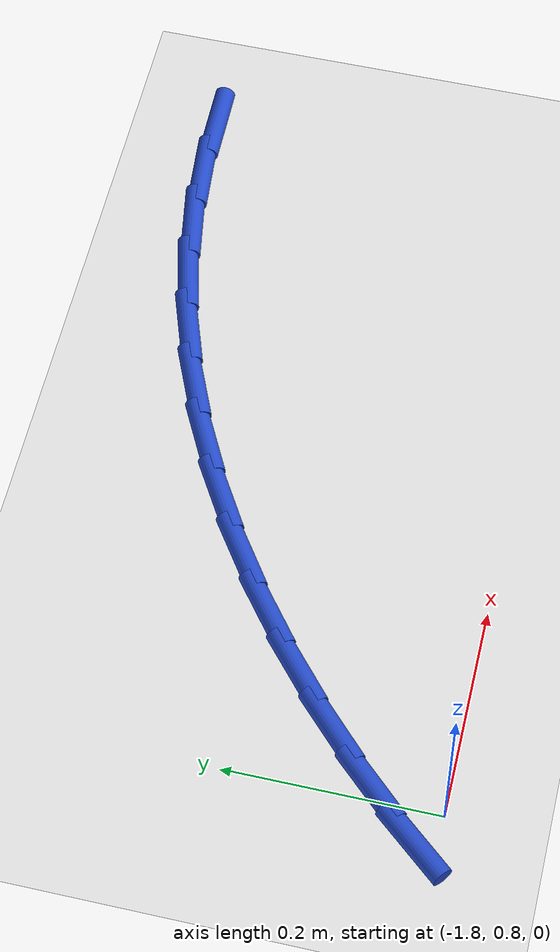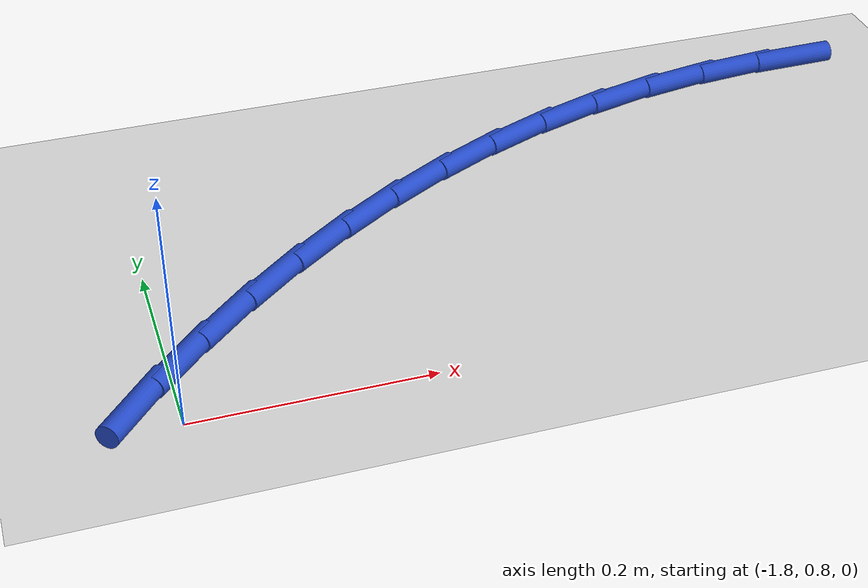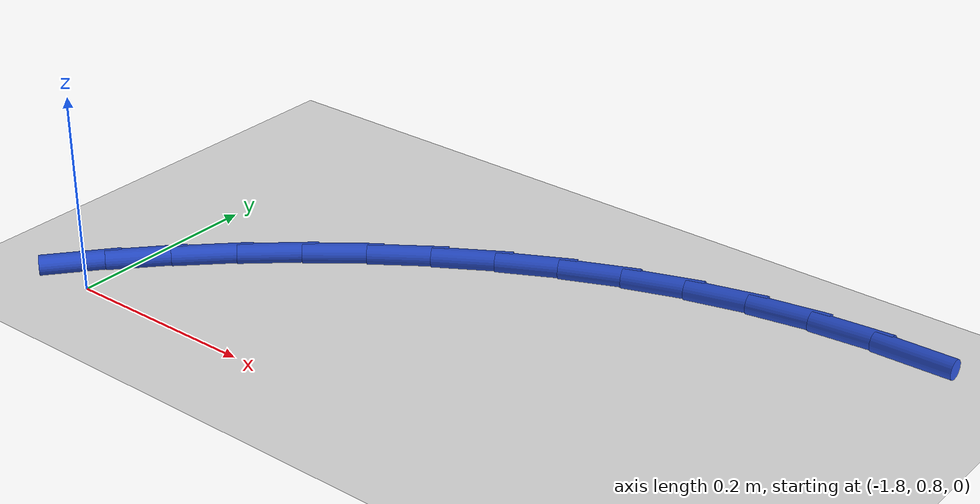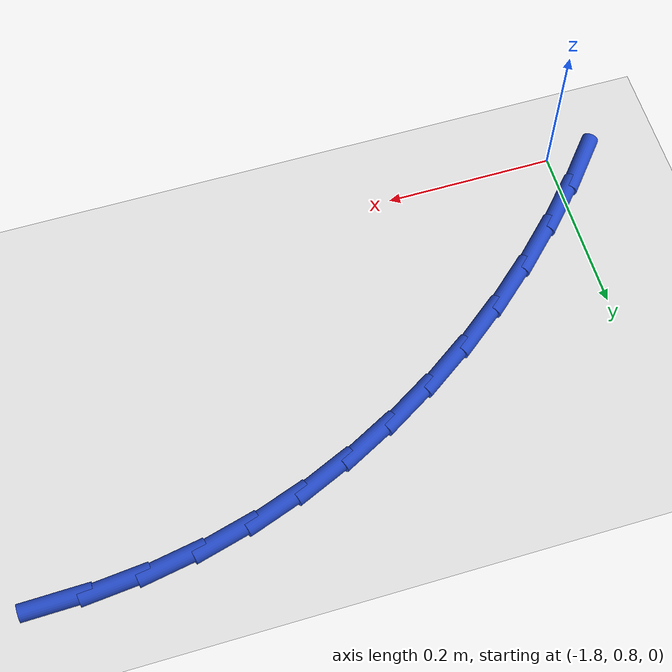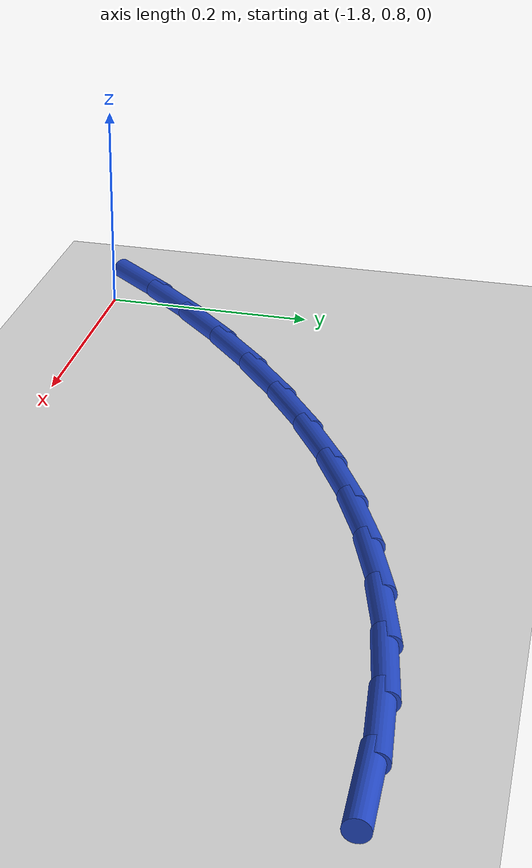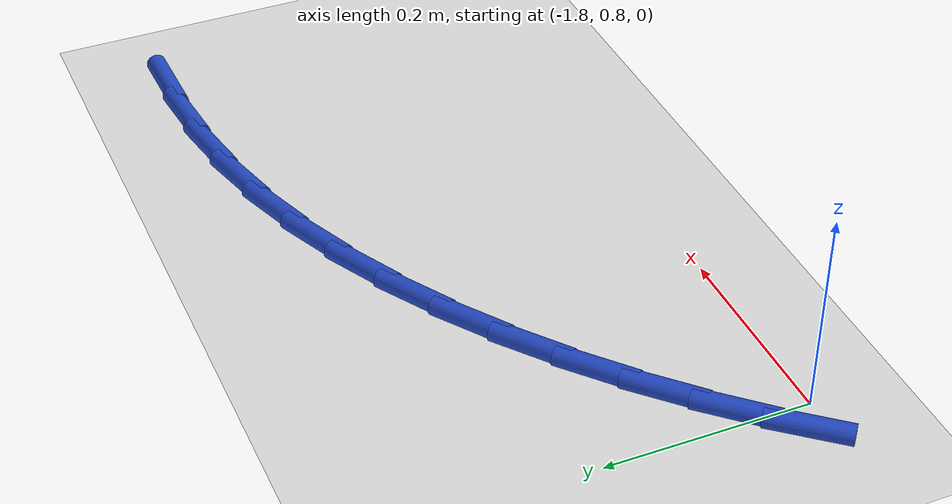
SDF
<sdf version="1.6">
 <world name="default">
  <model name="ground_plane">
   <static>1</static>
   <link name="link">
    <collision name="collision">
     <geometry><plane><normal>0 0 1</normal><size>100 100</size></plane></geometry>
     <surface><friction><ode><mu>100</mu><mu2>50</mu2></ode></friction></surface>
    </collision>
    <visual name="visual">
     <cast_shadows>0</cast_shadows>
     <geometry><plane><normal>0 0 1</normal><size>100 100</size></plane></geometry>
     <material>
      <script><uri>file://media/materials/scripts/gazebo.material</uri><name>Gazebo/WhiteGlow</name></script>
     </material>
    </visual>
   </link>
  </model>
  <model name="line">
   <link name="link_28">
    <pose>-1.1187028475868679 1.1735730946585516 0.01 0 1.57 0.019079662235753934</pose>
    <collision name="collision">
     <geometry><cylinder><radius>0.01</radius><length>0.08</length></cylinder></geometry>
    </collision>
    <visual name="visual">
     <material>
      <script><name>Gazebo/Blue</name><uri>file://media/materials/scripts/gazebo.material</uri></script>
     </material>
     <geometry><cylinder><radius>0.01</radius><length>0.08</length></cylinder></geometry>
    </visual>
   </link>
   <link name="link_29">
    <pose>-1.1815850007583404 1.172373178808656 0.01 0 1.57 0.09586181471503626</pose>
    <collision name="collision">
     <geometry><cylinder><radius>0.01</radius><length>0.08</length></cylinder></geometry>
    </collision>
    <visual name="visual">
     <material>
      <script><name>Gazebo/Blue</name><uri>file://media/materials/scripts/gazebo.material</uri></script>
     </material>
     <geometry><cylinder><radius>0.01</radius><length>0.08</length></cylinder></geometry>
    </visual>
   </link>
   <link name="link_30">
    <pose>-1.243923424676854 1.166378931753902 0.01 0 1.57 0.17686797643280647</pose>
    <collision name="collision">
     <geometry><cylinder><radius>0.01</radius><length>0.08</length></cylinder></geometry>
    </collision>
    <visual name="visual">
     <material>
      <script><name>Gazebo/Blue</name><uri>file://media/materials/scripts/gazebo.material</uri></script>
     </material>
     <geometry><cylinder><radius>0.01</radius><length>0.08</length></cylinder></geometry>
    </visual>
   </link>
   <link name="link_31">
    <pose>-1.3053974848366892 1.1553913270305838 0.01 0 1.57 0.2596142040582244</pose>
    <collision name="collision">
     <geometry><cylinder><radius>0.01</radius><length>0.08</length></cylinder></geometry>
    </collision>
    <visual name="visual">
     <material>
      <script><name>Gazebo/Blue</name><uri>file://media/materials/scripts/gazebo.material</uri></script>
     </material>
     <geometry><cylinder><radius>0.01</radius><length>0.08</length></cylinder></geometry>
    </visual>
   </link>
   <link name="link_32">
    <pose>-1.365735219229402 1.1393651127283397 0.01 0 1.57 0.33838265094514014</pose>
    <collision name="collision">
     <geometry><cylinder><radius>0.01</radius><length>0.08</length></cylinder></geometry>
    </collision>
    <visual name="visual">
     <material>
      <script><name>Gazebo/Blue</name><uri>file://media/materials/scripts/gazebo.material</uri></script>
     </material>
     <geometry><cylinder><radius>0.01</radius><length>0.08</length></cylinder></geometry>
    </visual>
   </link>
   <link name="link_33">
    <pose>-1.4247705333641598 1.118589511869161 0.01 0 1.57 0.4124141269007058</pose>
    <collision name="collision">
     <geometry><cylinder><radius>0.01</radius><length>0.08</length></cylinder></geometry>
    </collision>
    <visual name="visual">
     <material>
      <script><name>Gazebo/Blue</name><uri>file://media/materials/scripts/gazebo.material</uri></script>
     </material>
     <geometry><cylinder><radius>0.01</radius><length>0.08</length></cylinder></geometry>
    </visual>
   </link>
   <link name="link_34">
    <pose>-1.482351243958264 1.0933976981645863 0.01 0 1.57 0.48188473611051746</pose>
    <collision name="collision">
     <geometry><cylinder><radius>0.01</radius><length>0.08</length></cylinder></geometry>
    </collision>
    <visual name="visual">
     <material>
      <script><name>Gazebo/Blue</name><uri>file://media/materials/scripts/gazebo.material</uri></script>
     </material>
     <geometry><cylinder><radius>0.01</radius><length>0.08</length></cylinder></geometry>
    </visual>
   </link>
   <link name="link_35">
    <pose>-1.538325167729015 1.0641228453261538 0.01 0 1.57 0.5471159759422997</pose>
    <collision name="collision">
     <geometry><cylinder><radius>0.01</radius><length>0.08</length></cylinder></geometry>
    </collision>
    <visual name="visual">
     <material>
      <script><name>Gazebo/Blue</name><uri>file://media/materials/scripts/gazebo.material</uri></script>
     </material>
     <geometry><cylinder><radius>0.01</radius><length>0.08</length></cylinder></geometry>
    </visual>
   </link>
   <link name="link_36">
    <pose>-1.5925401213937145 1.0310981270654025 0.01 0 1.57 0.6085251700058243</pose>
    <collision name="collision">
     <geometry><cylinder><radius>0.01</radius><length>0.08</length></cylinder></geometry>
    </collision>
    <visual name="visual">
     <material>
      <script><name>Gazebo/Blue</name><uri>file://media/materials/scripts/gazebo.material</uri></script>
     </material>
     <geometry><cylinder><radius>0.01</radius><length>0.08</length></cylinder></geometry>
    </visual>
   </link>
   <link name="link_37">
    <pose>-1.6448439216696629 0.9946567170938705 0.01 0 1.57 0.666587695055519</pose>
    <collision name="collision">
     <geometry><cylinder><radius>0.01</radius><length>0.08</length></cylinder></geometry>
    </collision>
    <visual name="visual">
     <material>
      <script><name>Gazebo/Blue</name><uri>file://media/materials/scripts/gazebo.material</uri></script>
     </material>
     <geometry><cylinder><radius>0.01</radius><length>0.08</length></cylinder></geometry>
    </visual>
   </link>
   <link name="link_38">
    <pose>-1.695084385274162 0.9551317891230967 0.01 0 1.57 0.7218111606893297</pose>
    <collision name="collision">
     <geometry><cylinder><radius>0.01</radius><length>0.08</length></cylinder></geometry>
    </collision>
    <visual name="visual">
     <material>
      <script><name>Gazebo/Blue</name><uri>file://media/materials/scripts/gazebo.material</uri></script>
     </material>
     <geometry><cylinder><radius>0.01</radius><length>0.08</length></cylinder></geometry>
    </visual>
   </link>
   <link name="link_39">
    <pose>-1.7431093289245125 0.9128565168646193 0.01 0 1.57 0.7747200860126825</pose>
    <collision name="collision">
     <geometry><cylinder><radius>0.01</radius><length>0.08</length></cylinder></geometry>
    </collision>
    <visual name="visual">
     <material>
      <script><name>Gazebo/Blue</name><uri>file://media/materials/scripts/gazebo.material</uri></script>
     </material>
     <geometry><cylinder><radius>0.01</radius><length>0.08</length></cylinder></geometry>
    </visual>
   </link>
   <link name="link_40">
    <pose>-1.7887665693380161 0.8681640740299771 0.01 0 1.57 0.8258560585432506</pose>
    <collision name="collision">
     <geometry><cylinder><radius>0.01</radius><length>0.08</length></cylinder></geometry>
    </collision>
    <visual name="visual">
     <material>
      <script><name>Gazebo/Blue</name><uri>file://media/materials/scripts/gazebo.material</uri></script>
     </material>
     <geometry><cylinder><radius>0.01</radius><length>0.08</length></cylinder></geometry>
    </visual>
   </link>
   <link name="link_41">
    <pose>-1.8319056134675782 0.8213851520725695 0.01 0 1.57 0.8759299101094741</pose>
    <collision name="collision">
     <geometry><cylinder><radius>0.01</radius><length>0.08</length></cylinder></geometry>
    </collision>
    <visual name="visual">
     <material>
      <script><name>Gazebo/Blue</name><uri>file://media/materials/scripts/gazebo.material</uri></script>
     </material>
     <geometry><cylinder><radius>0.01</radius><length>0.08</length></cylinder></geometry>
    </visual>
   </link>
  </model>
 </world>
</sdf>
